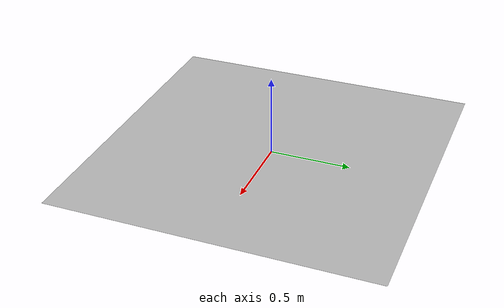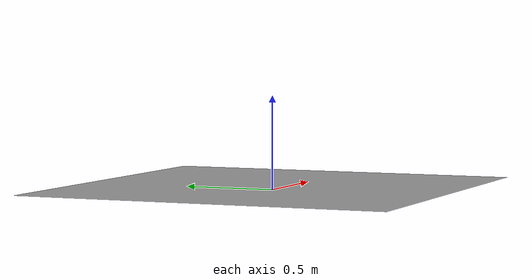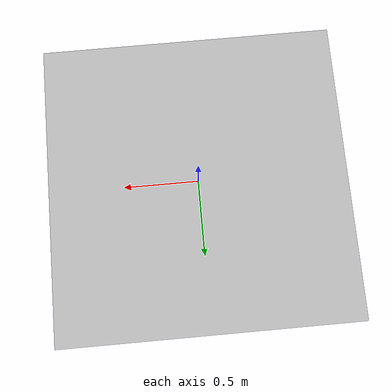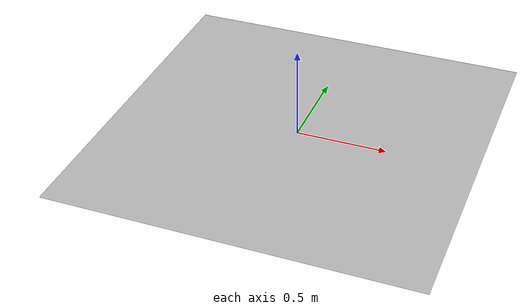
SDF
<?xml version='1.0'?>
<sdf version='1.6'>
  <model name='home_mat'>
    <link name='landing_mat'>
      <pose frame=''>0 0 0.02 0 -0 0</pose>
      <self_collide>0</self_collide>
      <enable_wind>0</enable_wind>
      <kinematic>0</kinematic>
      <visual name='mat'>
        <geometry>
          <mesh>
            <uri>model://landing_mat/landing_mat.dae</uri>
          </mesh>
        </geometry>
        <material>
          <shader type='pixel'/>
        </material>
        <pose frame=''>0 0 0 0 -0 0</pose>
        <transparency>0</transparency>
        <cast_shadows>1</cast_shadows>
      </visual>
    </link>
    <static>1</static>
    <allow_auto_disable>1</allow_auto_disable>
  </model>
</sdf>
